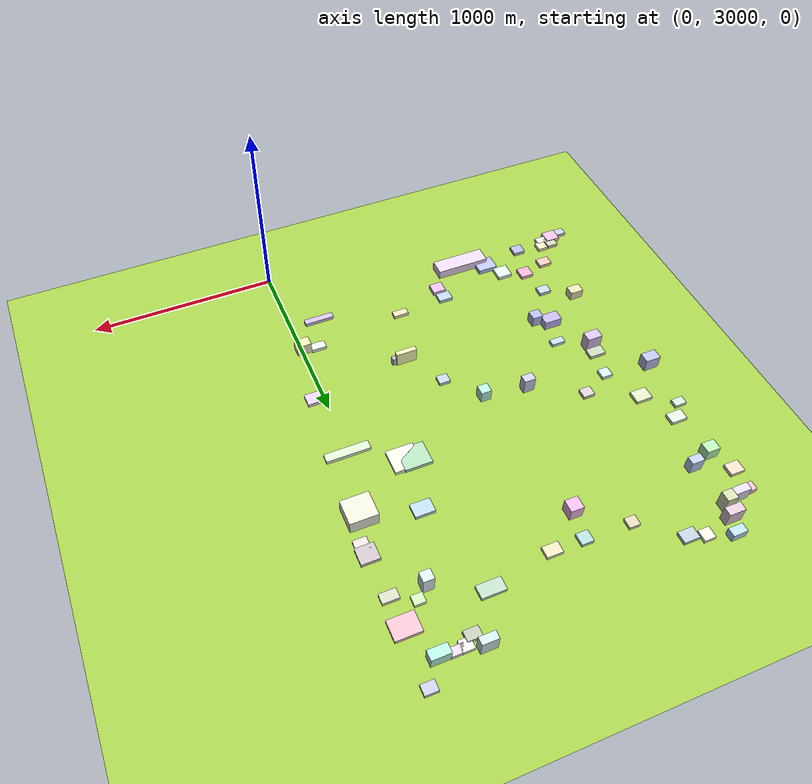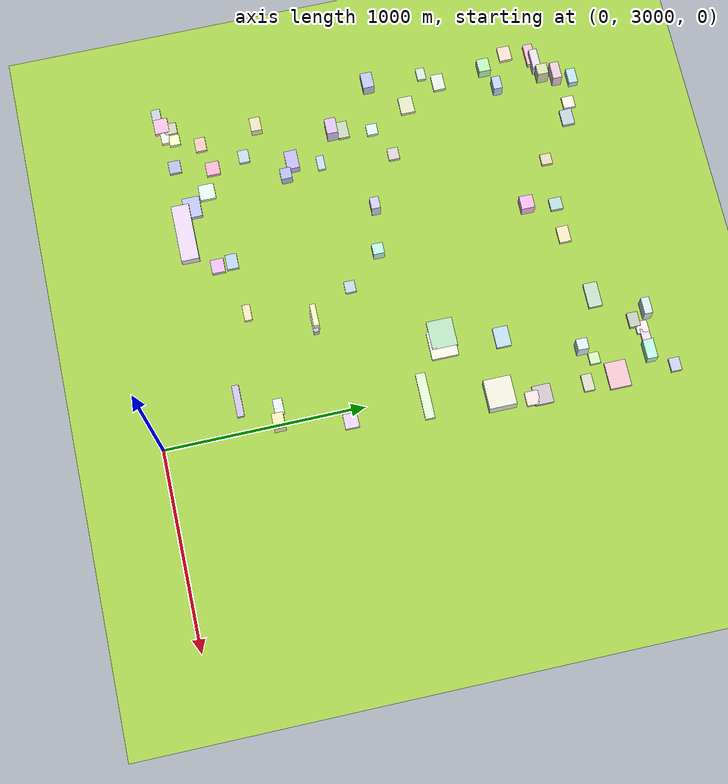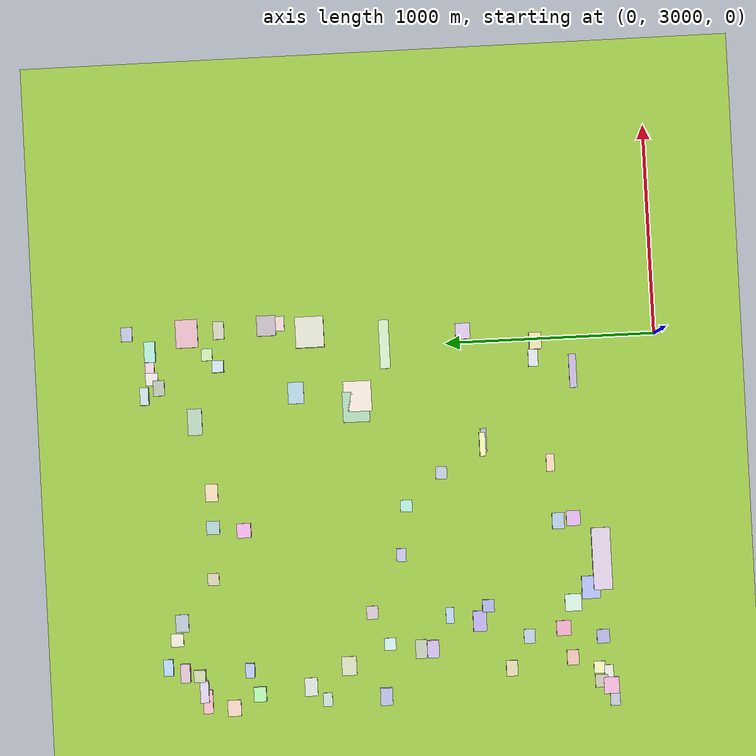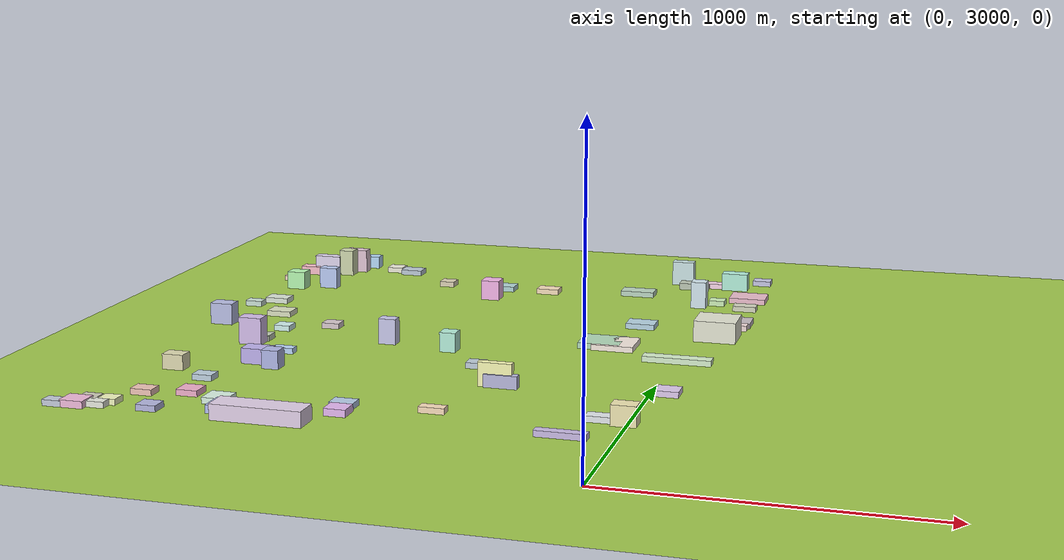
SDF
<sdf version="1.9">
 <world name="city_map">
  <model name="ground_plane">
   <static>1</static>
   <link name="link">
    <collision name="collision">
     <geometry><plane><normal>0 0 1</normal><size>11000 11000</size></plane></geometry>
    </collision>
    <visual name="visual">
     <geometry><plane><normal>0 0 1</normal><size>11000 11000</size></plane></geometry>
     <material>
      <ambient>0.551 0.712 0.210 1</ambient>
      <diffuse>0.651 0.812 0.310 1</diffuse>
      <specular>0.1 0.1 0.05 1</specular>
     </material>
    </visual>
   </link>
  </model>
  <model name="building_850747745">
   <static>1</static>
   <pose>-1067.149498136121 3306.5745603035307 25.54829295765892 0 0 0</pose>
   <link name="link">
    <collision name="collision">
     <geometry><box><size>296.9958694613478 89.35499999996921 51.09658591531784</size></box></geometry>
    </collision>
    <visual name="visual">
     <cast_shadows>false</cast_shadows>
     <geometry><box><size>296.9958694613478 89.35499999996921 51.09658591531784</size></box></geometry>
     <material>
      <ambient>0.810 0.743 0.834 1</ambient>
      <diffuse>0.910 0.843 0.934 1</diffuse>
      <specular>0.273 0.253 0.280 1</specular>
      <emissive>0.01 0.01 0.01 1</emissive>
     </material>
    </visual>
   </link>
  </model>
  <model name="building_490344329">
   <static>1</static>
   <pose>87.17408019821043 4648.719850238128 37.43345077462526 0 0 0</pose>
   <link name="link">
    <collision name="collision">
     <geometry><box><size>147.78186803230366 135.96390000044067 74.86690154925051</size></box></geometry>
    </collision>
    <visual name="visual">
     <cast_shadows>false</cast_shadows>
     <geometry><box><size>147.78186803230366 135.96390000044067 74.86690154925051</size></box></geometry>
     <material>
      <ambient>0.820 0.823 0.751 1</ambient>
      <diffuse>0.920 0.923 0.851 1</diffuse>
      <specular>0.276 0.277 0.255 1</specular>
      <emissive>0.01 0.01 0.01 1</emissive>
     </material>
    </visual>
   </link>
  </model>
  <model name="building_692315423">
   <static>1</static>
   <pose>-230.560864776751 4435.646304822101 10.0 0 0 0</pose>
   <link name="link">
    <collision name="collision">
     <geometry><box><size>145.74300000035834 134.3804650803438 20</size></box></geometry>
    </collision>
    <visual name="visual">
     <cast_shadows>false</cast_shadows>
     <geometry><box><size>145.74300000035834 134.3804650803438 20</size></box></geometry>
     <material>
      <ambient>0.888 0.840 0.798 1</ambient>
      <diffuse>0.988 0.940 0.898 1</diffuse>
      <specular>0.296 0.282 0.269 1</specular>
      <emissive>0.01 0.01 0.01 1</emissive>
     </material>
    </visual>
   </link>
  </model>
  <model name="building_230809453">
   <static>1</static>
   <pose>-280.9161445829634 4444.754031289215 10.0 0 0 0</pose>
   <link name="link">
    <collision name="collision">
     <geometry><box><size>145.75410000048805 128.29987010282815 20</size></box></geometry>
    </collision>
    <visual name="visual">
     <cast_shadows>false</cast_shadows>
     <geometry><box><size>145.75410000048805 128.29987010282815 20</size></box></geometry>
     <material>
      <ambient>0.614 0.778 0.646 1</ambient>
      <diffuse>0.714 0.878 0.746 1</diffuse>
      <specular>0.214 0.264 0.224 1</specular>
      <emissive>0.01 0.01 0.01 1</emissive>
     </material>
    </visual>
   </link>
  </model>
  <model name="building_765359409">
   <static>1</static>
   <pose>110.54076375611464 5238.766499804211 10.0 0 0 0</pose>
   <link name="link">
    <collision name="collision">
     <geometry><box><size>135.05370000005712 105.5157453115536 20</size></box></geometry>
    </collision>
    <visual name="visual">
     <cast_shadows>false</cast_shadows>
     <geometry><box><size>135.05370000005712 105.5157453115536 20</size></box></geometry>
     <material>
      <ambient>0.845 0.660 0.718 1</ambient>
      <diffuse>0.945 0.760 0.818 1</diffuse>
      <specular>0.284 0.228 0.246 1</specular>
      <emissive>0.01 0.01 0.01 1</emissive>
     </material>
    </visual>
   </link>
  </model>
  <model name="building_840812467">
   <static>1</static>
   <pose>12.203154513497264 4294.057868111458 10.0 0 0 0</pose>
   <link name="link">
    <collision name="collision">
     <geometry><box><size>233.6310547551312 47.952000000393014 20</size></box></geometry>
    </collision>
    <visual name="visual">
     <cast_shadows>false</cast_shadows>
     <geometry><box><size>233.6310547551312 47.952000000393014 20</size></box></geometry>
     <material>
      <ambient>0.763 0.857 0.722 1</ambient>
      <diffuse>0.863 0.957 0.822 1</diffuse>
      <specular>0.259 0.287 0.247 1</specular>
      <emissive>0.01 0.01 0.01 1</emissive>
     </material>
    </visual>
   </link>
  </model>
  <model name="building_427185521">
   <static>1</static>
   <pose>-1201.5175508851346 3364.6717829701574 13.5 0 0 0</pose>
   <link name="link">
    <collision name="collision">
     <geometry><box><size>108.76890000048434 87.24450686771424 27.0</size></box></geometry>
    </collision>
    <visual name="visual">
     <cast_shadows>false</cast_shadows>
     <geometry><box><size>108.76890000048434 87.24450686771424 27.0</size></box></geometry>
     <material>
      <ambient>0.627 0.673 0.886 1</ambient>
      <diffuse>0.727 0.773 0.986 1</diffuse>
      <specular>0.218 0.232 0.296 1</specular>
      <emissive>0.01 0.01 0.01 1</emissive>
     </material>
    </visual>
   </link>
  </model>
  <model name="building_335553592">
   <static>1</static>
   <pose>129.33247861080136 4855.71850532973 10.0 0 0 0</pose>
   <link name="link">
    <collision name="collision">
     <geometry><box><size>97.264681890423 90.56489999991157 20</size></box></geometry>
    </collision>
    <visual name="visual">
     <cast_shadows>false</cast_shadows>
     <geometry><box><size>97.264681890423 90.56489999991157 20</size></box></geometry>
     <material>
      <ambient>0.704 0.663 0.691 1</ambient>
      <diffuse>0.804 0.763 0.791 1</diffuse>
      <specular>0.241 0.229 0.237 1</specular>
      <emissive>0.01 0.01 0.01 1</emissive>
     </material>
    </visual>
   </link>
  </model>
  <model name="building_507748937">
   <static>1</static>
   <pose>-314.54824716614 5220.264983863792 10.0 0 0 0</pose>
   <link name="link">
    <collision name="collision">
     <geometry><box><size>126.87299999988966 68.85278691353538 20</size></box></geometry>
    </collision>
    <visual name="visual">
     <cast_shadows>false</cast_shadows>
     <geometry><box><size>126.87299999988966 68.85278691353538 20</size></box></geometry>
     <material>
      <ambient>0.658 0.762 0.681 1</ambient>
      <diffuse>0.758 0.862 0.781 1</diffuse>
      <specular>0.227 0.259 0.234 1</specular>
      <emissive>0.01 0.01 0.01 1</emissive>
     </material>
    </visual>
   </link>
  </model>
  <model name="building_292573722">
   <static>1</static>
   <pose>-199.67526805500094 4729.843738515521 10.0 0 0 0</pose>
   <link name="link">
    <collision name="collision">
     <geometry><box><size>103.313033247238 75.36899999978885 20</size></box></geometry>
    </collision>
    <visual name="visual">
     <cast_shadows>false</cast_shadows>
     <geometry><box><size>103.313033247238 75.36899999978885 20</size></box></geometry>
     <material>
      <ambient>0.638 0.757 0.819 1</ambient>
      <diffuse>0.738 0.857 0.919 1</diffuse>
      <specular>0.221 0.257 0.276 1</specular>
      <emissive>0.01 0.01 0.01 1</emissive>
     </material>
    </visual>
   </link>
  </model>
  <model name="building_393428820">
   <static>1</static>
   <pose>-1270.6362604161682 3452.620862244265 10.0 0 0 0</pose>
   <link name="link">
    <collision name="collision">
     <geometry><box><size>82.05255243917466 79.2540000002333 20</size></box></geometry>
    </collision>
    <visual name="visual">
     <cast_shadows>false</cast_shadows>
     <geometry><box><size>82.05255243917466 79.2540000002333 20</size></box></geometry>
     <material>
      <ambient>0.776 0.876 0.817 1</ambient>
      <diffuse>0.876 0.976 0.917 1</diffuse>
      <specular>0.263 0.293 0.275 1</specular>
      <emissive>0.01 0.01 0.01 1</emissive>
     </material>
    </visual>
   </link>
  </model>
  <model name="building_366200489">
   <static>1</static>
   <pose>-1519.1711483532129 4540.491457216974 10.0 0 0 0</pose>
   <link name="link">
    <collision name="collision">
     <geometry><box><size>90.4285602995321 71.15100000018515 20</size></box></geometry>
    </collision>
    <visual name="visual">
     <cast_shadows>false</cast_shadows>
     <geometry><box><size>90.4285602995321 71.15100000018515 20</size></box></geometry>
     <material>
      <ambient>0.779 0.801 0.674 1</ambient>
      <diffuse>0.879 0.901 0.774 1</diffuse>
      <specular>0.264 0.270 0.232 1</specular>
      <emissive>0.01 0.01 0.01 1</emissive>
     </material>
    </visual>
   </link>
  </model>
  <model name="building_484420964">
   <static>1</static>
   <pose>-1336.113893088748 3904.875081727763 26.59101747636057 0 0 0</pose>
   <link name="link">
    <collision name="collision">
     <geometry><box><size>98.2016702631362 64.1468999995709 53.18203495272114</size></box></geometry>
    </collision>
    <visual name="visual">
     <cast_shadows>false</cast_shadows>
     <geometry><box><size>98.2016702631362 64.1468999995709 53.18203495272114</size></box></geometry>
     <material>
      <ambient>0.664 0.614 0.853 1</ambient>
      <diffuse>0.764 0.714 0.953 1</diffuse>
      <specular>0.229 0.214 0.286 1</specular>
      <emissive>0.01 0.01 0.01 1</emissive>
     </material>
    </visual>
   </link>
  </model>
  <model name="building_283031561">
   <static>1</static>
   <pose>-1675.1345848430908 3290.180328079305 12.0 0 0 0</pose>
   <link name="link">
    <collision name="collision">
     <geometry><box><size>78.8626216566737 72.39419999972796 24.0</size></box></geometry>
    </collision>
    <visual name="visual">
     <cast_shadows>false</cast_shadows>
     <geometry><box><size>78.8626216566737 72.39419999972796 24.0</size></box></geometry>
     <material>
      <ambient>0.864 0.649 0.776 1</ambient>
      <diffuse>0.964 0.749 0.876 1</diffuse>
      <specular>0.289 0.225 0.263 1</specular>
      <emissive>0.01 0.01 0.01 1</emissive>
     </material>
    </visual>
   </link>
  </model>
  <model name="building_710300618">
   <static>1</static>
   <pose>-161.2047840156924 3397.8325333376506 10.0 0 0 0</pose>
   <link name="link">
    <collision name="collision">
     <geometry><box><size>161.03594087829381 34.421100000010085 20</size></box></geometry>
    </collision>
    <visual name="visual">
     <cast_shadows>false</cast_shadows>
     <geometry><box><size>161.03594087829381 34.421100000010085 20</size></box></geometry>
     <material>
      <ambient>0.711 0.652 0.816 1</ambient>
      <diffuse>0.811 0.752 0.916 1</diffuse>
      <specular>0.243 0.225 0.275 1</specular>
      <emissive>0.01 0.01 0.01 1</emissive>
     </material>
    </visual>
   </link>
  </model>
  <model name="building_37488058">
   <static>1</static>
   <pose>-1609.8496182625656 4727.256973872888 10.0 0 0 0</pose>
   <link name="link">
    <collision name="collision">
     <geometry><box><size>87.20652271430478 61.471799999857524 20</size></box></geometry>
    </collision>
    <visual name="visual">
     <cast_shadows>false</cast_shadows>
     <geometry><box><size>87.20652271430478 61.471799999857524 20</size></box></geometry>
     <material>
      <ambient>0.784 0.824 0.772 1</ambient>
      <diffuse>0.884 0.924 0.872 1</diffuse>
      <specular>0.265 0.277 0.262 1</specular>
      <emissive>0.01 0.01 0.01 1</emissive>
     </material>
    </visual>
   </link>
  </model>
  <model name="building_784175170">
   <static>1</static>
   <pose>-1654.9304352172928 5223.2510250887735 15.910043620540844 0 0 0</pose>
   <link name="link">
    <collision name="collision">
     <geometry><box><size>113.76719838368318 47.05289999935047 31.820087241081687</size></box></geometry>
    </collision>
    <visual name="visual">
     <cast_shadows>false</cast_shadows>
     <geometry><box><size>113.76719838368318 47.05289999935047 31.820087241081687</size></box></geometry>
     <material>
      <ambient>0.899 0.666 0.711 1</ambient>
      <diffuse>0.999 0.766 0.811 1</diffuse>
      <specular>0.300 0.230 0.243 1</specular>
      <emissive>0.01 0.01 0.01 1</emissive>
     </material>
    </visual>
   </link>
  </model>
  <model name="building_919728273">
   <static>1</static>
   <pose>55.81305144105056 3915.758590888932 10.0 0 0 0</pose>
   <link name="link">
    <collision name="collision">
     <geometry><box><size>75.86850000010514 69.9307636359996 20</size></box></geometry>
    </collision>
    <visual name="visual">
     <cast_shadows>false</cast_shadows>
     <geometry><box><size>75.86850000010514 69.9307636359996 20</size></box></geometry>
     <material>
      <ambient>0.793 0.715 0.853 1</ambient>
      <diffuse>0.893 0.815 0.953 1</diffuse>
      <specular>0.268 0.244 0.286 1</specular>
      <emissive>0.01 0.01 0.01 1</emissive>
     </material>
    </visual>
   </link>
  </model>
  <model name="building_676215589">
   <static>1</static>
   <pose>-1274.4772730760378 5329.35306057125 10.0 0 0 0</pose>
   <link name="link">
    <collision name="collision">
     <geometry><box><size>83.90317430132298 62.204400000531734 20</size></box></geometry>
    </collision>
    <visual name="visual">
     <cast_shadows>false</cast_shadows>
     <geometry><box><size>83.90317430132298 62.204400000531734 20</size></box></geometry>
     <material>
      <ambient>0.657 0.711 0.764 1</ambient>
      <diffuse>0.757 0.811 0.864 1</diffuse>
      <specular>0.227 0.243 0.259 1</specular>
      <emissive>0.01 0.01 0.01 1</emissive>
     </material>
    </visual>
   </link>
  </model>
  <model name="building_247375318">
   <static>1</static>
   <pose>30.43722311409551 5418.071568013927 33.1716408443242 0 0 0</pose>
   <link name="link">
    <collision name="collision">
     <geometry><box><size>98.55690000023998 52.408022440593385 66.3432816886484</size></box></geometry>
    </collision>
    <visual name="visual">
     <cast_shadows>false</cast_shadows>
     <geometry><box><size>98.55690000023998 52.408022440593385 66.3432816886484</size></box></geometry>
     <material>
      <ambient>0.623 0.860 0.780 1</ambient>
      <diffuse>0.723 0.960 0.880 1</diffuse>
      <specular>0.217 0.288 0.264 1</specular>
      <emissive>0.01 0.01 0.01 1</emissive>
     </material>
    </visual>
   </link>
  </model>
  <model name="building_412746947">
   <static>1</static>
   <pose>-1455.815732995844 4191.473447063172 10.0 0 0 0</pose>
   <link name="link">
    <collision name="collision">
     <geometry><box><size>90.2799096768806 55.69979999944508 20</size></box></geometry>
    </collision>
    <visual name="visual">
     <cast_shadows>false</cast_shadows>
     <geometry><box><size>90.2799096768806 55.69979999944508 20</size></box></geometry>
     <material>
      <ambient>0.684 0.729 0.630 1</ambient>
      <diffuse>0.784 0.829 0.730 1</diffuse>
      <specular>0.235 0.249 0.219 1</specular>
      <emissive>0.01 0.01 0.01 1</emissive>
     </material>
    </visual>
   </link>
  </model>
  <model name="building_761808263">
   <static>1</static>
   <pose>-657.2732757977564 5157.494793268885 10.0 0 0 0</pose>
   <link name="link">
    <collision name="collision">
     <geometry><box><size>84.36509367174281 59.562599999630095 20</size></box></geometry>
    </collision>
    <visual name="visual">
     <cast_shadows>false</cast_shadows>
     <geometry><box><size>84.36509367174281 59.562599999630095 20</size></box></geometry>
     <material>
      <ambient>0.889 0.793 0.658 1</ambient>
      <diffuse>0.989 0.893 0.758 1</diffuse>
      <specular>0.297 0.268 0.227 1</specular>
      <emissive>0.01 0.01 0.01 1</emissive>
     </material>
    </visual>
   </link>
  </model>
  <model name="building_610976533">
   <static>1</static>
   <pose>-1692.5628587860065 5099.39721792064 10.0 0 0 0</pose>
   <link name="link">
    <collision name="collision">
     <geometry><box><size>77.33369999987616 64.60387485232322 20</size></box></geometry>
    </collision>
    <visual name="visual">
     <cast_shadows>false</cast_shadows>
     <geometry><box><size>77.33369999987616 64.60387485232322 20</size></box></geometry>
     <material>
      <ambient>0.879 0.763 0.688 1</ambient>
      <diffuse>0.979 0.863 0.788 1</diffuse>
      <specular>0.294 0.259 0.236 1</specular>
      <emissive>0.01 0.01 0.01 1</emissive>
     </material>
    </visual>
   </link>
  </model>
  <model name="building_663269164">
   <static>1</static>
   <pose>-1390.4813467118647 3504.8885507200553 10.0 0 0 0</pose>
   <link name="link">
    <collision name="collision">
     <geometry><box><size>71.71709999970233 68.76231672999793 20</size></box></geometry>
    </collision>
    <visual name="visual">
     <cast_shadows>false</cast_shadows>
     <geometry><box><size>71.71709999970233 68.76231672999793 20</size></box></geometry>
     <material>
      <ambient>0.865 0.601 0.716 1</ambient>
      <diffuse>0.965 0.701 0.816 1</diffuse>
      <specular>0.290 0.210 0.245 1</specular>
      <emissive>0.01 0.01 0.01 1</emissive>
     </material>
    </visual>
   </link>
  </model>
  <model name="building_49543863">
   <static>1</static>
   <pose>-1672.7738074797685 4368.887056589194 38.36971716504515 0 0 0</pose>
   <link name="link">
    <collision name="collision">
     <geometry><box><size>83.00209060088574 57.99749999948034 76.7394343300903</size></box></geometry>
    </collision>
    <visual name="visual">
     <cast_shadows>false</cast_shadows>
     <geometry><box><size>83.00209060088574 57.99749999948034 76.7394343300903</size></box></geometry>
     <material>
      <ambient>0.645 0.666 0.821 1</ambient>
      <diffuse>0.745 0.766 0.921 1</diffuse>
      <specular>0.223 0.230 0.276 1</specular>
      <emissive>0.01 0.01 0.01 1</emissive>
     </material>
    </visual>
   </link>
  </model>
  <model name="building_105786765">
   <static>1</static>
   <pose>-866.9628096947071 3432.123267563136 12.0 0 0 0</pose>
   <link name="link">
    <collision name="collision">
     <geometry><box><size>71.84771956316594 66.64440000036365 24.0</size></box></geometry>
    </collision>
    <visual name="visual">
     <cast_shadows>false</cast_shadows>
     <geometry><box><size>71.84771956316594 66.64440000036365 24.0</size></box></geometry>
     <material>
      <ambient>0.819 0.637 0.867 1</ambient>
      <diffuse>0.919 0.737 0.967 1</diffuse>
      <specular>0.276 0.221 0.290 1</specular>
      <emissive>0.01 0.01 0.01 1</emissive>
     </material>
    </visual>
   </link>
  </model>
  <model name="building_621410657">
   <static>1</static>
   <pose>136.56651672862952 4802.571020120185 10.0 0 0 0</pose>
   <link name="link">
    <collision name="collision">
     <geometry><box><size>70.47796215643554 66.44460000039487 20</size></box></geometry>
    </collision>
    <visual name="visual">
     <cast_shadows>false</cast_shadows>
     <geometry><box><size>70.47796215643554 66.44460000039487 20</size></box></geometry>
     <material>
      <ambient>0.868 0.775 0.772 1</ambient>
      <diffuse>0.968 0.875 0.872 1</diffuse>
      <specular>0.290 0.262 0.262 1</specular>
      <emissive>0.01 0.01 0.01 1</emissive>
     </material>
    </visual>
   </link>
  </model>
  <model name="building_70229116">
   <static>1</static>
   <pose>-845.6702337602933 5010.508721622835 36.73541214629077 0 0 0</pose>
   <link name="link">
    <collision name="collision">
     <geometry><box><size>69.17945643635792 67.27709999987042 73.47082429258154</size></box></geometry>
    </collision>
    <visual name="visual">
     <cast_shadows>false</cast_shadows>
     <geometry><box><size>69.17945643635792 67.27709999987042 73.47082429258154</size></box></geometry>
     <material>
      <ambient>0.879 0.631 0.831 1</ambient>
      <diffuse>0.979 0.731 0.931 1</diffuse>
      <specular>0.294 0.219 0.279 1</specular>
      <emissive>0.01 0.01 0.01 1</emissive>
     </material>
    </visual>
   </link>
  </model>
  <model name="building_157852567">
   <static>1</static>
   <pose>-1456.75147907493 4135.26982508244 47.36806128754667 0 0 0</pose>
   <link name="link">
    <collision name="collision">
     <geometry><box><size>82.56728222590156 56.33250000052925 94.73612257509333</size></box></geometry>
    </collision>
    <visual name="visual">
     <cast_shadows>false</cast_shadows>
     <geometry><box><size>82.56728222590156 56.33250000052925 94.73612257509333</size></box></geometry>
     <material>
      <ambient>0.750 0.662 0.839 1</ambient>
      <diffuse>0.850 0.762 0.939 1</diffuse>
      <specular>0.255 0.229 0.282 1</specular>
      <emissive>0.01 0.01 0.01 1</emissive>
     </material>
    </visual>
   </link>
  </model>
  <model name="building_744549658">
   <static>1</static>
   <pose>-9.181950739263886 3572.140246696261 33.255 0 0 0</pose>
   <link name="link">
    <collision name="collision">
     <geometry><box><size>79.84230000000991 56.963575892693754 66.51</size></box></geometry>
    </collision>
    <visual name="visual">
     <cast_shadows>false</cast_shadows>
     <geometry><box><size>79.84230000000991 56.963575892693754 66.51</size></box></geometry>
     <material>
      <ambient>0.864 0.824 0.617 1</ambient>
      <diffuse>0.964 0.924 0.717 1</diffuse>
      <specular>0.289 0.277 0.215 1</specular>
      <emissive>0.01 0.01 0.01 1</emissive>
     </material>
    </visual>
   </link>
  </model>
  <model name="building_445875788">
   <static>1</static>
   <pose>-876.1952162550194 3505.1309556604447 10.0 0 0 0</pose>
   <link name="link">
    <collision name="collision">
     <geometry><box><size>77.78880000046229 57.781067077938374 20</size></box></geometry>
    </collision>
    <visual name="visual">
     <cast_shadows>false</cast_shadows>
     <geometry><box><size>77.78880000046229 57.781067077938374 20</size></box></geometry>
     <material>
      <ambient>0.635 0.723 0.839 1</ambient>
      <diffuse>0.735 0.823 0.939 1</diffuse>
      <specular>0.220 0.247 0.282 1</specular>
      <emissive>0.01 0.01 0.01 1</emissive>
     </material>
    </visual>
   </link>
  </model>
  <model name="building_862212367">
   <static>1</static>
   <pose>118.89183320386954 5085.254687162499 10.0 0 0 0</pose>
   <link name="link">
    <collision name="collision">
     <geometry><box><size>85.43903255254939 52.269899999586755 20</size></box></geometry>
    </collision>
    <visual name="visual">
     <cast_shadows>false</cast_shadows>
     <geometry><box><size>85.43903255254939 52.269899999586755 20</size></box></geometry>
     <material>
      <ambient>0.752 0.755 0.668 1</ambient>
      <diffuse>0.852 0.855 0.768 1</diffuse>
      <specular>0.256 0.256 0.230 1</specular>
      <emissive>0.01 0.01 0.01 1</emissive>
     </material>
    </visual>
   </link>
  </model>
  <model name="building_29135851">
   <static>1</static>
   <pose>-1605.6178303058236 5236.531995498226 37.68331643956897 0 0 0</pose>
   <link name="link">
    <collision name="collision">
     <geometry><box><size>103.77390000047626 40.886601037965754 75.36663287913794</size></box></geometry>
    </collision>
    <visual name="visual">
     <cast_shadows>false</cast_shadows>
     <geometry><box><size>103.77390000047626 40.886601037965754 75.36663287913794</size></box></geometry>
     <material>
      <ambient>0.799 0.759 0.855 1</ambient>
      <diffuse>0.899 0.859 0.955 1</diffuse>
      <specular>0.270 0.258 0.287 1</specular>
      <emissive>0.01 0.01 0.01 1</emissive>
     </material>
    </visual>
   </link>
  </model>
  <model name="building_787572665">
   <static>1</static>
   <pose>-1631.0996354314352 4971.9643902379 33.27656021778088 0 0 0</pose>
   <link name="link">
    <collision name="collision">
     <geometry><box><size>70.58345115298243 59.79569999998802 66.55312043556177</size></box></geometry>
    </collision>
    <visual name="visual">
     <cast_shadows>false</cast_shadows>
     <geometry><box><size>70.58345115298243 59.79569999998802 66.55312043556177</size></box></geometry>
     <material>
      <ambient>0.632 0.894 0.615 1</ambient>
      <diffuse>0.732 0.994 0.715 1</diffuse>
      <specular>0.220 0.298 0.214 1</specular>
      <emissive>0.01 0.01 0.01 1</emissive>
     </material>
    </visual>
   </link>
  </model>
  <model name="building_827809623">
   <static>1</static>
   <pose>-1533.169492968513 3467.7382198283517 10.0 0 0 0</pose>
   <link name="link">
    <collision name="collision">
     <geometry><box><size>72.92699999964469 55.87810877069058 20</size></box></geometry>
    </collision>
    <visual name="visual">
     <cast_shadows>false</cast_shadows>
     <geometry><box><size>72.92699999964469 55.87810877069058 20</size></box></geometry>
     <material>
      <ambient>0.860 0.688 0.636 1</ambient>
      <diffuse>0.960 0.788 0.736 1</diffuse>
      <specular>0.288 0.236 0.221 1</specular>
      <emissive>0.01 0.01 0.01 1</emissive>
     </material>
    </visual>
   </link>
  </model>
  <model name="building_332965824">
   <static>1</static>
   <pose>-1512.4841831657634 5322.652803138413 44.56985801310351 0 0 0</pose>
   <link name="link">
    <collision name="collision">
     <geometry><box><size>88.44392453477782 45.709800000217626 89.13971602620703</size></box></geometry>
    </collision>
    <visual name="visual">
     <cast_shadows>false</cast_shadows>
     <geometry><box><size>88.44392453477782 45.709800000217626 89.13971602620703</size></box></geometry>
     <material>
      <ambient>0.803 0.690 0.754 1</ambient>
      <diffuse>0.903 0.790 0.854 1</diffuse>
      <specular>0.271 0.237 0.256 1</specular>
      <emissive>0.01 0.01 0.01 1</emissive>
     </material>
    </visual>
   </link>
  </model>
  <model name="building_929485124">
   <static>1</static>
   <pose>-144.03326207513427 5384.149972749574 12.52884277450677 0 0 0</pose>
   <link name="link">
    <collision name="collision">
     <geometry><box><size>74.55870000057274 53.872667957588256 25.05768554901354</size></box></geometry>
    </collision>
    <visual name="visual">
     <cast_shadows>false</cast_shadows>
     <geometry><box><size>74.55870000057274 53.872667957588256 25.05768554901354</size></box></geometry>
     <material>
      <ambient>0.655 0.696 0.621 1</ambient>
      <diffuse>0.755 0.796 0.721 1</diffuse>
      <specular>0.226 0.239 0.216 1</specular>
      <emissive>0.01 0.01 0.01 1</emissive>
     </material>
    </visual>
   </link>
  </model>
  <model name="building_478270062">
   <static>1</static>
   <pose>-1568.6488423749443 3762.59113283745 26.065389693332417 0 0 0</pose>
   <link name="link">
    <collision name="collision">
     <geometry><box><size>73.89447130670483 54.3344999992641 52.130779386664834</size></box></geometry>
    </collision>
    <visual name="visual">
     <cast_shadows>false</cast_shadows>
     <geometry><box><size>73.89447130670483 54.3344999992641 52.130779386664834</size></box></geometry>
     <material>
      <ambient>0.797 0.780 0.618 1</ambient>
      <diffuse>0.897 0.880 0.718 1</diffuse>
      <specular>0.269 0.264 0.215 1</specular>
      <emissive>0.01 0.01 0.01 1</emissive>
     </material>
    </visual>
   </link>
  </model>
  <model name="building_684065176">
   <static>1</static>
   <pose>-824.9466634453764 5158.753599263481 10.0 0 0 0</pose>
   <link name="link">
    <collision name="collision">
     <geometry><box><size>63.74730000042206 62.91620595809235 20</size></box></geometry>
    </collision>
    <visual name="visual">
     <cast_shadows>false</cast_shadows>
     <geometry><box><size>63.74730000042206 62.91620595809235 20</size></box></geometry>
     <material>
      <ambient>0.615 0.754 0.761 1</ambient>
      <diffuse>0.715 0.854 0.861 1</diffuse>
      <specular>0.214 0.256 0.258 1</specular>
      <emissive>0.01 0.01 0.01 1</emissive>
     </material>
    </visual>
   </link>
  </model>
  <model name="building_87336383">
   <static>1</static>
   <pose>-1439.1691418678656 3317.739998149354 10.0 0 0 0</pose>
   <link name="link">
    <collision name="collision">
     <geometry><box><size>66.11244235742056 60.439500000413204 20</size></box></geometry>
    </collision>
    <visual name="visual">
     <cast_shadows>false</cast_shadows>
     <geometry><box><size>66.11244235742056 60.439500000413204 20</size></box></geometry>
     <material>
      <ambient>0.623 0.631 0.797 1</ambient>
      <diffuse>0.723 0.731 0.897 1</diffuse>
      <specular>0.217 0.219 0.269 1</specular>
      <emissive>0.01 0.01 0.01 1</emissive>
     </material>
    </visual>
   </link>
  </model>
  <model name="building_743358947">
   <static>1</static>
   <pose>-89.65264112751726 3585.1431183756176 10.0 0 0 0</pose>
   <link name="link">
    <collision name="collision">
     <geometry><box><size>81.9402000000764 46.387418454576085 20</size></box></geometry>
    </collision>
    <visual name="visual">
     <cast_shadows>false</cast_shadows>
     <geometry><box><size>81.9402000000764 46.387418454576085 20</size></box></geometry>
     <material>
      <ambient>0.813 0.831 0.852 1</ambient>
      <diffuse>0.913 0.931 0.952 1</diffuse>
      <specular>0.274 0.279 0.286 1</specular>
      <emissive>0.01 0.01 0.01 1</emissive>
     </material>
    </visual>
   </link>
  </model>
  <model name="building_826558098">
   <static>1</static>
   <pose>-1354.5688960600253 5356.665983380944 10.0 0 0 0</pose>
   <link name="link">
    <collision name="collision">
     <geometry><box><size>62.16000000001287 60.71422111930684 20</size></box></geometry>
    </collision>
    <visual name="visual">
     <cast_shadows>false</cast_shadows>
     <geometry><box><size>62.16000000001287 60.71422111930684 20</size></box></geometry>
     <material>
      <ambient>0.858 0.847 0.780 1</ambient>
      <diffuse>0.958 0.947 0.880 1</diffuse>
      <specular>0.287 0.284 0.264 1</specular>
      <emissive>0.01 0.01 0.01 1</emissive>
     </material>
    </visual>
   </link>
  </model>
  <model name="building_741344469">
   <static>1</static>
   <pose>-1651.7112539091004 3335.8067427486562 10.0 0 0 0</pose>
   <link name="link">
    <collision name="collision">
     <geometry><box><size>61.076769947691595 60.49500000027308 20</size></box></geometry>
    </collision>
    <visual name="visual">
     <cast_shadows>false</cast_shadows>
     <geometry><box><size>61.076769947691595 60.49500000027308 20</size></box></geometry>
     <material>
      <ambient>0.722 0.707 0.633 1</ambient>
      <diffuse>0.822 0.807 0.733 1</diffuse>
      <specular>0.247 0.242 0.220 1</specular>
      <emissive>0.01 0.01 0.01 1</emissive>
     </material>
    </visual>
   </link>
  </model>
  <model name="building_28945284">
   <static>1</static>
   <pose>-1483.172013294698 5404.099380409052 23.886281490828235 0 0 0</pose>
   <link name="link">
    <collision name="collision">
     <geometry><box><size>78.43712488602436 46.24259999934566 47.77256298165647</size></box></geometry>
    </collision>
    <visual name="visual">
     <cast_shadows>false</cast_shadows>
     <geometry><box><size>78.43712488602436 46.24259999934566 47.77256298165647</size></box></geometry>
     <material>
      <ambient>0.633 0.777 0.894 1</ambient>
      <diffuse>0.733 0.877 0.994 1</diffuse>
      <specular>0.220 0.263 0.298 1</specular>
      <emissive>0.01 0.01 0.01 1</emissive>
     </material>
    </visual>
   </link>
  </model>
  <model name="building_448918184">
   <static>1</static>
   <pose>-1421.2345336618173 3670.6862123949836 10.0 0 0 0</pose>
   <link name="link">
    <collision name="collision">
     <geometry><box><size>67.90979999937719 53.25043748266687 20</size></box></geometry>
    </collision>
    <visual name="visual">
     <cast_shadows>false</cast_shadows>
     <geometry><box><size>67.90979999937719 53.25043748266687 20</size></box></geometry>
     <material>
      <ambient>0.664 0.742 0.797 1</ambient>
      <diffuse>0.764 0.842 0.897 1</diffuse>
      <specular>0.229 0.253 0.269 1</specular>
      <emissive>0.01 0.01 0.01 1</emissive>
     </material>
    </visual>
   </link>
  </model>
  <model name="building_307967320">
   <static>1</static>
   <pose>-99.30066540159021 5416.267474924474 10.0 0 0 0</pose>
   <link name="link">
    <collision name="collision">
     <geometry><box><size>60.396396830339604 59.7845999998583 20</size></box></geometry>
    </collision>
    <visual name="visual">
     <cast_shadows>false</cast_shadows>
     <geometry><box><size>60.396396830339604 59.7845999998583 20</size></box></geometry>
     <material>
      <ambient>0.859 0.835 0.830 1</ambient>
      <diffuse>0.959 0.935 0.930 1</diffuse>
      <specular>0.288 0.281 0.279 1</specular>
      <emissive>0.01 0.01 0.01 1</emissive>
     </material>
    </visual>
   </link>
  </model>
  <model name="building_832208636">
   <static>1</static>
   <pose>121.77876915665445 5526.2544203227735 10.0 0 0 0</pose>
   <link name="link">
    <collision name="collision">
     <geometry><box><size>67.78242290441656 52.91370000001194 20</size></box></geometry>
    </collision>
    <visual name="visual">
     <cast_shadows>false</cast_shadows>
     <geometry><box><size>67.78242290441656 52.91370000001194 20</size></box></geometry>
     <material>
      <ambient>0.692 0.699 0.813 1</ambient>
      <diffuse>0.792 0.799 0.913 1</diffuse>
      <specular>0.238 0.240 0.274 1</specular>
      <emissive>0.01 0.01 0.01 1</emissive>
     </material>
    </visual>
   </link>
  </model>
  <model name="building_848898120">
   <static>1</static>
   <pose>-1269.6965617717067 4417.155165381744 10.0 0 0 0</pose>
   <link name="link">
    <collision name="collision">
     <geometry><box><size>63.02579999987756 55.23972473236777 20</size></box></geometry>
    </collision>
    <visual name="visual">
     <cast_shadows>false</cast_shadows>
     <geometry><box><size>63.02579999987756 55.23972473236777 20</size></box></geometry>
     <material>
      <ambient>0.765 0.709 0.729 1</ambient>
      <diffuse>0.865 0.809 0.829 1</diffuse>
      <specular>0.259 0.243 0.249 1</specular>
      <emissive>0.01 0.01 0.01 1</emissive>
     </material>
    </visual>
   </link>
  </model>
  <model name="building_948644197">
   <static>1</static>
   <pose>-180.82895652410664 5452.561835936042 46.25725445759248 0 0 0</pose>
   <link name="link">
    <collision name="collision">
     <geometry><box><size>84.02944873834312 40.914600000178325 92.51450891518496</size></box></geometry>
    </collision>
    <visual name="visual">
     <cast_shadows>false</cast_shadows>
     <geometry><box><size>84.02944873834312 40.914600000178325 92.51450891518496</size></box></geometry>
     <material>
      <ambient>0.717 0.817 0.818 1</ambient>
      <diffuse>0.817 0.917 0.918 1</diffuse>
      <specular>0.245 0.275 0.275 1</specular>
      <emissive>0.01 0.01 0.01 1</emissive>
     </material>
    </visual>
   </link>
  </model>
  <model name="building_486977141">
   <static>1</static>
   <pose>-1264.6476596329553 3861.1432227996756 31.7756175181432 0 0 0</pose>
   <link name="link">
    <collision name="collision">
     <geometry><box><size>58.65240000003524 56.06254517336568 63.5512350362864</size></box></geometry>
    </collision>
    <visual name="visual">
     <cast_shadows>false</cast_shadows>
     <geometry><box><size>58.65240000003524 56.06254517336568 63.5512350362864</size></box></geometry>
     <material>
      <ambient>0.609 0.634 0.823 1</ambient>
      <diffuse>0.709 0.734 0.923 1</diffuse>
      <specular>0.213 0.220 0.277 1</specular>
      <emissive>0.01 0.01 0.01 1</emissive>
     </material>
    </visual>
   </link>
  </model>
  <model name="building_852642623">
   <static>1</static>
   <pose>-53.069583932186454 5423.61303103403 10.0 0 0 0</pose>
   <link name="link">
    <collision name="collision">
     <geometry><box><size>75.12479999930122 43.74548299372871 20</size></box></geometry>
    </collision>
    <visual name="visual">
     <cast_shadows>false</cast_shadows>
     <geometry><box><size>75.12479999930122 43.74548299372871 20</size></box></geometry>
     <material>
      <ambient>0.887 0.756 0.832 1</ambient>
      <diffuse>0.987 0.856 0.932 1</diffuse>
      <specular>0.296 0.257 0.280 1</specular>
      <emissive>0.01 0.01 0.01 1</emissive>
     </material>
    </visual>
   </link>
  </model>
  <model name="building_878116863">
   <static>1</static>
   <pose>-1424.7563657840292 4339.00167782802 10.0 0 0 0</pose>
   <link name="link">
    <collision name="collision">
     <geometry><box><size>58.40820000033631 55.67256242012929 20</size></box></geometry>
    </collision>
    <visual name="visual">
     <cast_shadows>false</cast_shadows>
     <geometry><box><size>58.40820000033631 55.67256242012929 20</size></box></geometry>
     <material>
      <ambient>0.740 0.866 0.852 1</ambient>
      <diffuse>0.840 0.966 0.952 1</diffuse>
      <specular>0.252 0.290 0.286 1</specular>
      <emissive>0.01 0.01 0.01 1</emissive>
     </material>
    </visual>
   </link>
  </model>
  <model name="building_567780635">
   <static>1</static>
   <pose>-617.7578068681013 4052.9646376528985 10.0 0 0 0</pose>
   <link name="link">
    <collision name="collision">
     <geometry><box><size>59.962199999567645 53.64445398766405 20</size></box></geometry>
    </collision>
    <visual name="visual">
     <cast_shadows>false</cast_shadows>
     <geometry><box><size>59.962199999567645 53.64445398766405 20</size></box></geometry>
     <material>
      <ambient>0.670 0.728 0.784 1</ambient>
      <diffuse>0.770 0.828 0.884 1</diffuse>
      <specular>0.231 0.248 0.265 1</specular>
      <emissive>0.01 0.01 0.01 1</emissive>
     </material>
    </visual>
   </link>
  </model>
  <model name="building_168889110">
   <static>1</static>
   <pose>-596.1047060226953 3528.069160851178 10.0 0 0 0</pose>
   <link name="link">
    <collision name="collision">
     <geometry><box><size>82.50629999959358 38.63300800430787 20</size></box></geometry>
    </collision>
    <visual name="visual">
     <cast_shadows>false</cast_shadows>
     <geometry><box><size>82.50629999959358 38.63300800430787 20</size></box></geometry>
     <material>
      <ambient>0.898 0.786 0.653 1</ambient>
      <diffuse>0.998 0.886 0.753 1</diffuse>
      <specular>0.300 0.266 0.226 1</specular>
      <emissive>0.01 0.01 0.01 1</emissive>
     </material>
    </visual>
   </link>
  </model>
  <model name="building_672762860">
   <static>1</static>
   <pose>-1528.8861879212695 5254.784979661439 49.99513136111749 0 0 0</pose>
   <link name="link">
    <collision name="collision">
     <geometry><box><size>57.020699999895896 55.58777914998908 99.99026272223497</size></box></geometry>
    </collision>
    <visual name="visual">
     <cast_shadows>false</cast_shadows>
     <geometry><box><size>57.020699999895896 55.58777914998908 99.99026272223497</size></box></geometry>
     <material>
      <ambient>0.733 0.769 0.601 1</ambient>
      <diffuse>0.833 0.869 0.701 1</diffuse>
      <specular>0.250 0.261 0.210 1</specular>
      <emissive>0.01 0.01 0.01 1</emissive>
     </material>
    </visual>
   </link>
  </model>
  <model name="building_95323559">
   <static>1</static>
   <pose>-1071.6976418827521 5169.374303255818 10.0 0 0 0</pose>
   <link name="link">
    <collision name="collision">
     <geometry><box><size>57.686700000580515 54.90733653466831 20</size></box></geometry>
    </collision>
    <visual name="visual">
     <cast_shadows>false</cast_shadows>
     <geometry><box><size>57.686700000580515 54.90733653466831 20</size></box></geometry>
     <material>
      <ambient>0.782 0.742 0.629 1</ambient>
      <diffuse>0.882 0.842 0.729 1</diffuse>
      <specular>0.264 0.253 0.219 1</specular>
      <emissive>0.01 0.01 0.01 1</emissive>
     </material>
    </visual>
   </link>
  </model>
  <model name="building_126517009">
   <static>1</static>
   <pose>-491.7378389538104 3849.6310339390325 40.29735716021398 0 0 0</pose>
   <link name="link">
    <collision name="collision">
     <geometry><box><size>113.23110000057568 27.87952461384582 80.59471432042795</size></box></geometry>
    </collision>
    <visual name="visual">
     <cast_shadows>false</cast_shadows>
     <geometry><box><size>113.23110000057568 27.87952461384582 80.59471432042795</size></box></geometry>
     <material>
      <ambient>0.900 0.900 0.629 1</ambient>
      <diffuse>1.000 1.000 0.729 1</diffuse>
      <specular>0.300 0.300 0.219 1</specular>
      <emissive>0.01 0.01 0.01 1</emissive>
     </material>
    </visual>
   </link>
  </model>
  <model name="building_940132828">
   <static>1</static>
   <pose>-767.2469272616448 4228.708690952471 34.183392521761014 0 0 0</pose>
   <link name="link">
    <collision name="collision">
     <geometry><box><size>56.39910000051884 55.9572041173217 68.36678504352203</size></box></geometry>
    </collision>
    <visual name="visual">
     <cast_shadows>false</cast_shadows>
     <geometry><box><size>56.39910000051884 55.9572041173217 68.36678504352203</size></box></geometry>
     <material>
      <ambient>0.628 0.859 0.778 1</ambient>
      <diffuse>0.728 0.959 0.878 1</diffuse>
      <specular>0.218 0.288 0.263 1</specular>
      <emissive>0.01 0.01 0.01 1</emissive>
     </material>
    </visual>
   </link>
  </model>
  <model name="building_184305987">
   <static>1</static>
   <pose>-1585.9141102649094 3342.979261783982 10.0 0 0 0</pose>
   <link name="link">
    <collision name="collision">
     <geometry><box><size>57.31714138018253 53.79060000000635 20</size></box></geometry>
    </collision>
    <visual name="visual">
     <cast_shadows>false</cast_shadows>
     <geometry><box><size>57.31714138018253 53.79060000000635 20</size></box></geometry>
     <material>
      <ambient>0.873 0.889 0.669 1</ambient>
      <diffuse>0.973 0.989 0.769 1</diffuse>
      <specular>0.292 0.297 0.231 1</specular>
      <emissive>0.01 0.01 0.01 1</emissive>
     </material>
    </visual>
   </link>
  </model>
  <model name="building_194314325">
   <static>1</static>
   <pose>-471.6997854463415 3842.5964385335537 21.81166318949267 0 0 0</pose>
   <link name="link">
    <collision name="collision">
     <geometry><box><size>112.38750000018172 27.373343873024975 43.62332637898534</size></box></geometry>
    </collision>
    <visual name="visual">
     <cast_shadows>false</cast_shadows>
     <geometry><box><size>112.38750000018172 27.373343873024975 43.62332637898534</size></box></geometry>
     <material>
      <ambient>0.641 0.641 0.781 1</ambient>
      <diffuse>0.741 0.741 0.881 1</diffuse>
      <specular>0.222 0.222 0.264 1</specular>
      <emissive>0.01 0.01 0.01 1</emissive>
     </material>
    </visual>
   </link>
  </model>
  <model name="building_479126804">
   <static>1</static>
   <pose>-1514.825796288986 5014.10912068538 39.368947359471555 0 0 0</pose>
   <link name="link">
    <collision name="collision">
     <geometry><box><size>69.24700414833494 44.07810000007828 78.73789471894311</size></box></geometry>
    </collision>
    <visual name="visual">
     <cast_shadows>false</cast_shadows>
     <geometry><box><size>69.24700414833494 44.07810000007828 78.73789471894311</size></box></geometry>
     <material>
      <ambient>0.647 0.716 0.876 1</ambient>
      <diffuse>0.747 0.816 0.976 1</diffuse>
      <specular>0.224 0.245 0.293 1</specular>
      <emissive>0.01 0.01 0.01 1</emissive>
     </material>
    </visual>
   </link>
  </model>
  <model name="building_430304027">
   <static>1</static>
   <pose>-55.69336255323985 5094.488737900718 49.66981919960536 0 0 0</pose>
   <link name="link">
    <collision name="collision">
     <geometry><box><size>55.69979999944508 54.46953765084428 99.33963839921071</size></box></geometry>
    </collision>
    <visual name="visual">
     <cast_shadows>false</cast_shadows>
     <geometry><box><size>55.69979999944508 54.46953765084428 99.33963839921071</size></box></geometry>
     <material>
      <ambient>0.752 0.827 0.860 1</ambient>
      <diffuse>0.852 0.927 0.960 1</diffuse>
      <specular>0.256 0.278 0.288 1</specular>
      <emissive>0.01 0.01 0.01 1</emissive>
     </material>
    </visual>
   </link>
  </model>
  <model name="building_805452497">
   <static>1</static>
   <pose>5.076558673424602 5146.860110484049 10.0 0 0 0</pose>
   <link name="link">
    <collision name="collision">
     <geometry><box><size>57.92354825751526 51.825899999919045 20</size></box></geometry>
    </collision>
    <visual name="visual">
     <cast_shadows>false</cast_shadows>
     <geometry><box><size>57.92354825751526 51.825899999919045 20</size></box></geometry>
     <material>
      <ambient>0.722 0.859 0.638 1</ambient>
      <diffuse>0.822 0.959 0.738 1</diffuse>
      <specular>0.247 0.288 0.222 1</specular>
      <emissive>0.01 0.01 0.01 1</emissive>
     </material>
    </visual>
   </link>
  </model>
  <model name="building_348496886">
   <static>1</static>
   <pose>-1741.2384906585896 3275.5900330887193 10.0 0 0 0</pose>
   <link name="link">
    <collision name="collision">
     <geometry><box><size>63.01469999974785 45.72209842559662 20</size></box></geometry>
    </collision>
    <visual name="visual">
     <cast_shadows>false</cast_shadows>
     <geometry><box><size>63.01469999974785 45.72209842559662 20</size></box></geometry>
     <material>
      <ambient>0.685 0.713 0.775 1</ambient>
      <diffuse>0.785 0.813 0.875 1</diffuse>
      <specular>0.235 0.244 0.262 1</specular>
      <emissive>0.01 0.01 0.01 1</emissive>
     </material>
    </visual>
   </link>
  </model>
  <model name="building_159175585">
   <static>1</static>
   <pose>-1674.3089181482321 4650.741267348009 10.0 0 0 0</pose>
   <link name="link">
    <collision name="collision">
     <geometry><box><size>64.25883233368543 44.76630000023363 20</size></box></geometry>
    </collision>
    <visual name="visual">
     <cast_shadows>false</cast_shadows>
     <geometry><box><size>64.25883233368543 44.76630000023363 20</size></box></geometry>
     <material>
      <ambient>0.716 0.803 0.756 1</ambient>
      <diffuse>0.816 0.903 0.856 1</diffuse>
      <specular>0.245 0.271 0.257 1</specular>
      <emissive>0.01 0.01 0.01 1</emissive>
     </material>
    </visual>
   </link>
  </model>
  <model name="building_8623577">
   <static>1</static>
   <pose>-1301.796625819325 4046.3133277903457 10.0 0 0 0</pose>
   <link name="link">
    <collision name="collision">
     <geometry><box><size>75.11839031125272 38.15070000021592 20</size></box></geometry>
    </collision>
    <visual name="visual">
     <cast_shadows>false</cast_shadows>
     <geometry><box><size>75.11839031125272 38.15070000021592 20</size></box></geometry>
     <material>
      <ambient>0.651 0.763 0.893 1</ambient>
      <diffuse>0.751 0.863 0.993 1</diffuse>
      <specular>0.225 0.259 0.298 1</specular>
      <emissive>0.01 0.01 0.01 1</emissive>
     </material>
    </visual>
   </link>
  </model>
  <model name="building_7898712">
   <static>1</static>
   <pose>-1609.3010155679558 3299.462797610707 10.0 0 0 0</pose>
   <link name="link">
    <collision name="collision">
     <geometry><box><size>65.23507286501717 42.657300000037424 20</size></box></geometry>
    </collision>
    <visual name="visual">
     <cast_shadows>false</cast_shadows>
     <geometry><box><size>65.23507286501717 42.657300000037424 20</size></box></geometry>
     <material>
      <ambient>0.830 0.838 0.791 1</ambient>
      <diffuse>0.930 0.938 0.891 1</diffuse>
      <specular>0.279 0.282 0.267 1</specular>
      <emissive>0.01 0.01 0.01 1</emissive>
     </material>
    </visual>
   </link>
  </model>
  <model name="building_114265560">
   <static>1</static>
   <pose>-1000.7362361594877 4264.550209418284 45.037624572657585 0 0 0</pose>
   <link name="link">
    <collision name="collision">
     <geometry><box><size>61.749299999945606 45.017775306054354 90.07524914531517</size></box></geometry>
    </collision>
    <visual name="visual">
     <cast_shadows>false</cast_shadows>
     <geometry><box><size>61.749299999945606 45.017775306054354 90.07524914531517</size></box></geometry>
     <material>
      <ambient>0.703 0.701 0.842 1</ambient>
      <diffuse>0.803 0.801 0.942 1</diffuse>
      <specular>0.241 0.240 0.283 1</specular>
      <emissive>0.01 0.01 0.01 1</emissive>
     </material>
    </visual>
   </link>
  </model>
 </world>
</sdf>
